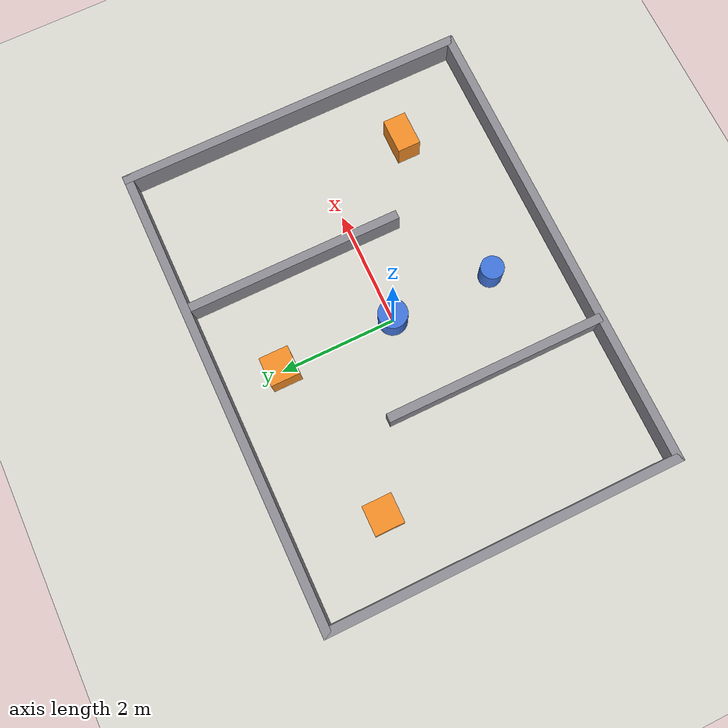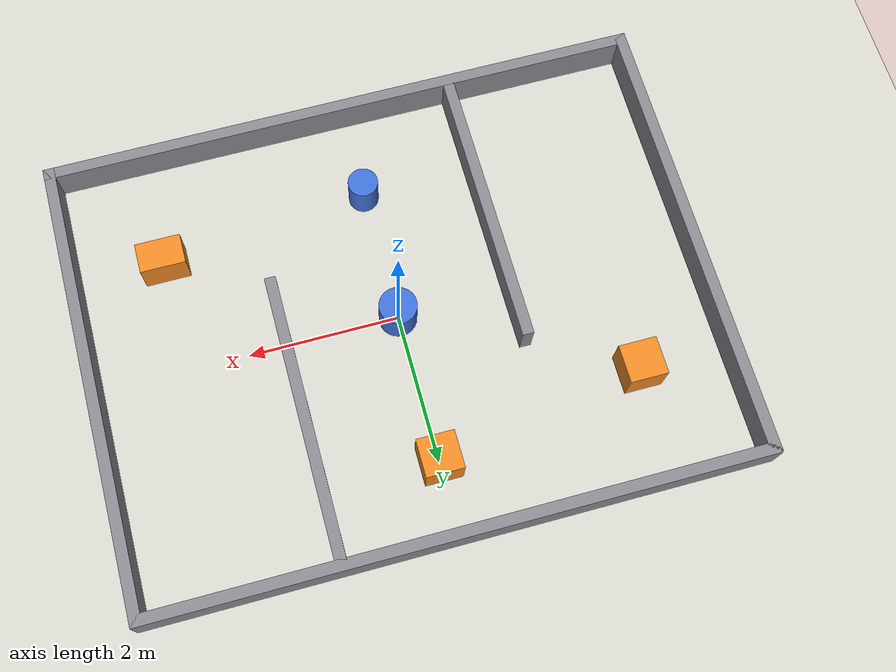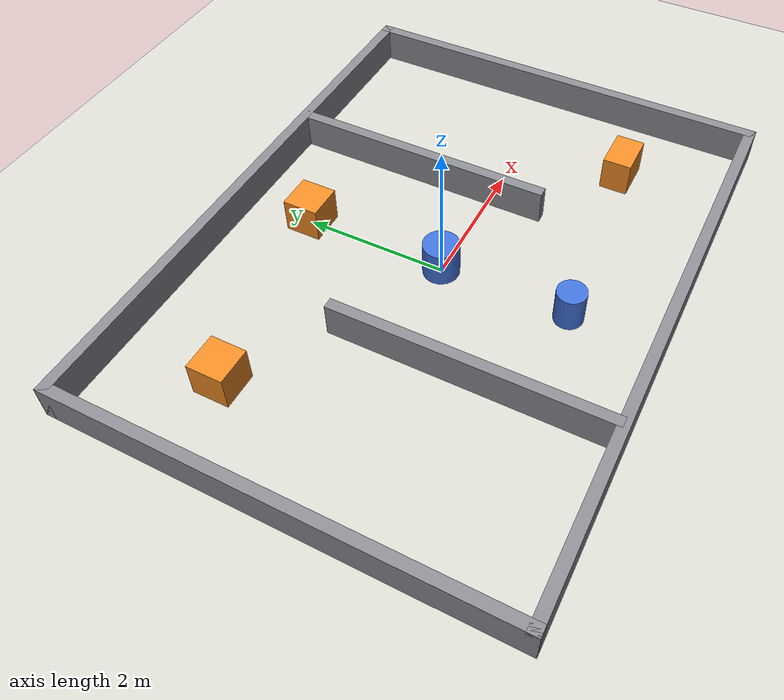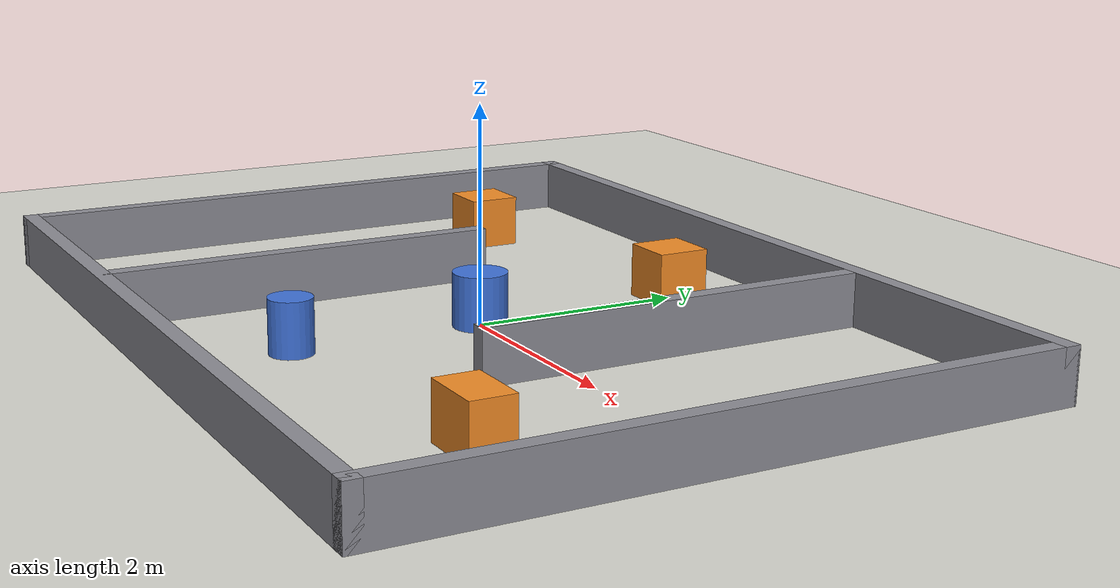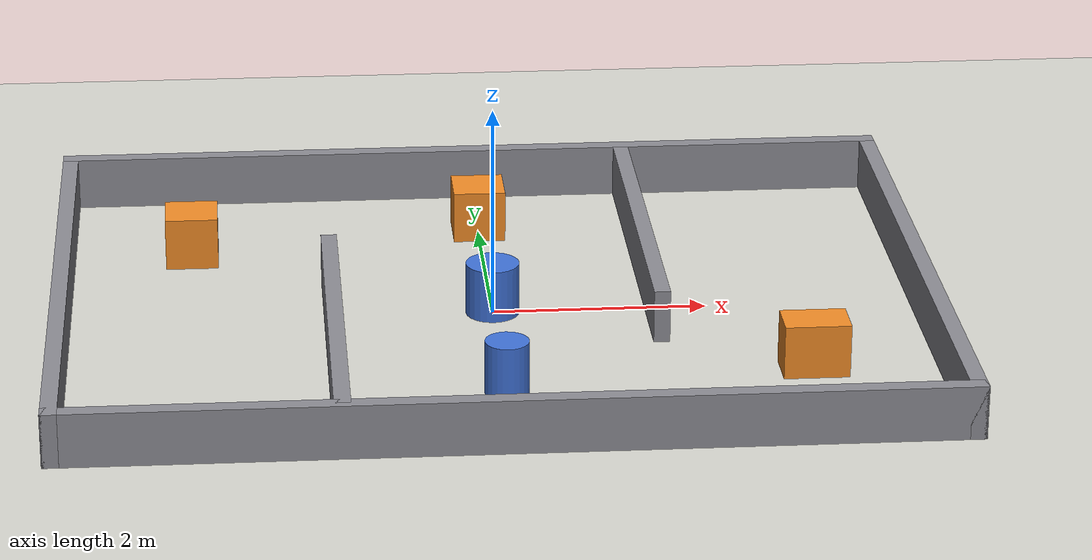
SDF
<?xml version="1.0"?>
<!-- AUTO-GENERATED by tools/generate_world_and_map.py - edit the layout there. -->
<sdf version="1.6">
  <world name="obstacle_course">
    <gravity>0 0 -9.8</gravity>
    <physics type="ode">
      <real_time_update_rate>1000.0</real_time_update_rate>
      <max_step_size>0.001</max_step_size>
      <real_time_factor>1</real_time_factor>
    </physics>
    <scene>
      <ambient>0.5 0.5 0.5 1</ambient>
      <background>0.75 0.8 0.85 1</background>
      <shadows>false</shadows>
    </scene>
    <gui fullscreen="0">
      <camera name="user_camera">
        <pose>0 -8.5 9.5 0 0.85 1.5708</pose>
        <view_controller>orbit</view_controller>
      </camera>
    </gui>
    <light name="sun" type="directional">
      <cast_shadows>false</cast_shadows>
      <pose>0 0 10 0 0 0</pose>
      <diffuse>0.9 0.9 0.9 1</diffuse>
      <specular>0.2 0.2 0.2 1</specular>
      <direction>-0.4 0.2 -0.9</direction>
    </light>
    <model name="ground_plane">
      <static>true</static>
      <link name="link">
        <collision name="collision">
          <geometry><plane><normal>0 0 1</normal><size>40 40</size></plane></geometry>
          <surface><friction><ode><mu>100</mu><mu2>50</mu2></ode></friction></surface>
        </collision>
        <visual name="visual">
          <cast_shadows>false</cast_shadows>
          <geometry><plane><normal>0 0 1</normal><size>40 40</size></plane></geometry>
          <material><ambient>0.85 0.85 0.82 1</ambient><diffuse>0.85 0.85 0.82 1</diffuse><specular>0.1 0.1 0.1 1</specular></material>
        </visual>
      </link>
    </model>
    <model name="wall_north">
      <static>true</static>
      <pose>0.0 3.0 0.25 0 0 0</pose>
      <link name="link">
        <collision name="collision"><geometry><box><size>8.150 0.150 0.5</size></box></geometry></collision>
        <visual name="visual"><geometry><box><size>8.150 0.150 0.5</size></box></geometry><material><ambient>0.55 0.55 0.58 1</ambient><diffuse>0.55 0.55 0.58 1</diffuse><specular>0.1 0.1 0.1 1</specular></material></visual>
      </link>
    </model>
    <model name="wall_south">
      <static>true</static>
      <pose>0.0 -3.0 0.25 0 0 0</pose>
      <link name="link">
        <collision name="collision"><geometry><box><size>8.150 0.150 0.5</size></box></geometry></collision>
        <visual name="visual"><geometry><box><size>8.150 0.150 0.5</size></box></geometry><material><ambient>0.55 0.55 0.58 1</ambient><diffuse>0.55 0.55 0.58 1</diffuse><specular>0.1 0.1 0.1 1</specular></material></visual>
      </link>
    </model>
    <model name="wall_east">
      <static>true</static>
      <pose>4.0 0.0 0.25 0 0 0</pose>
      <link name="link">
        <collision name="collision"><geometry><box><size>0.150 6.150 0.5</size></box></geometry></collision>
        <visual name="visual"><geometry><box><size>0.150 6.150 0.5</size></box></geometry><material><ambient>0.55 0.55 0.58 1</ambient><diffuse>0.55 0.55 0.58 1</diffuse><specular>0.1 0.1 0.1 1</specular></material></visual>
      </link>
    </model>
    <model name="wall_west">
      <static>true</static>
      <pose>-4.0 0.0 0.25 0 0 0</pose>
      <link name="link">
        <collision name="collision"><geometry><box><size>0.150 6.150 0.5</size></box></geometry></collision>
        <visual name="visual"><geometry><box><size>0.150 6.150 0.5</size></box></geometry><material><ambient>0.55 0.55 0.58 1</ambient><diffuse>0.55 0.55 0.58 1</diffuse><specular>0.1 0.1 0.1 1</specular></material></visual>
      </link>
    </model>
    <model name="divider_a">
      <static>true</static>
      <pose>-1.5 -1.1 0.25 0 0 0</pose>
      <link name="link">
        <collision name="collision"><geometry><box><size>0.150 3.800 0.5</size></box></geometry></collision>
        <visual name="visual"><geometry><box><size>0.150 3.800 0.5</size></box></geometry><material><ambient>0.55 0.55 0.58 1</ambient><diffuse>0.55 0.55 0.58 1</diffuse><specular>0.1 0.1 0.1 1</specular></material></visual>
      </link>
    </model>
    <model name="divider_b">
      <static>true</static>
      <pose>1.5 1.1 0.25 0 0 0</pose>
      <link name="link">
        <collision name="collision"><geometry><box><size>0.150 3.800 0.5</size></box></geometry></collision>
        <visual name="visual"><geometry><box><size>0.150 3.800 0.5</size></box></geometry><material><ambient>0.55 0.55 0.58 1</ambient><diffuse>0.55 0.55 0.58 1</diffuse><specular>0.1 0.1 0.1 1</specular></material></visual>
      </link>
    </model>
    <model name="crate_1">
      <static>true</static>
      <pose>-2.8 1.5 0.25 0 0 0</pose>
      <link name="link">
        <collision name="collision"><geometry><box><size>0.500 0.500 0.5</size></box></geometry></collision>
        <visual name="visual"><geometry><box><size>0.500 0.500 0.5</size></box></geometry><material><ambient>0.95 0.55 0.15 1</ambient><diffuse>0.95 0.55 0.15 1</diffuse><specular>0.1 0.1 0.1 1</specular></material></visual>
      </link>
    </model>
    <model name="crate_2">
      <static>true</static>
      <pose>0.0 2.0 0.25 0 0 0</pose>
      <link name="link">
        <collision name="collision"><geometry><box><size>0.500 0.500 0.5</size></box></geometry></collision>
        <visual name="visual"><geometry><box><size>0.500 0.500 0.5</size></box></geometry><material><ambient>0.95 0.55 0.15 1</ambient><diffuse>0.95 0.55 0.15 1</diffuse><specular>0.1 0.1 0.1 1</specular></material></visual>
      </link>
    </model>
    <model name="crate_3">
      <static>true</static>
      <pose>2.8 -1.5 0.25 0 0 0</pose>
      <link name="link">
        <collision name="collision"><geometry><box><size>0.600 0.400 0.5</size></box></geometry></collision>
        <visual name="visual"><geometry><box><size>0.600 0.400 0.5</size></box></geometry><material><ambient>0.95 0.55 0.15 1</ambient><diffuse>0.95 0.55 0.15 1</diffuse><specular>0.1 0.1 0.1 1</specular></material></visual>
      </link>
    </model>
    <model name="pillar_1">
      <static>true</static>
      <pose>0.0 0.0 0.25 0 0 0</pose>
      <link name="link">
        <collision name="collision"><geometry><cylinder><radius>0.25</radius><length>0.5</length></cylinder></geometry></collision>
        <visual name="visual"><geometry><cylinder><radius>0.25</radius><length>0.5</length></cylinder></geometry><material><ambient>0.25 0.45 0.85 1</ambient><diffuse>0.25 0.45 0.85 1</diffuse><specular>0.1 0.1 0.1 1</specular></material></visual>
      </link>
    </model>
    <model name="pillar_2">
      <static>true</static>
      <pose>0.0 -1.8 0.25 0 0 0</pose>
      <link name="link">
        <collision name="collision"><geometry><cylinder><radius>0.2</radius><length>0.5</length></cylinder></geometry></collision>
        <visual name="visual"><geometry><cylinder><radius>0.2</radius><length>0.5</length></cylinder></geometry><material><ambient>0.25 0.45 0.85 1</ambient><diffuse>0.25 0.45 0.85 1</diffuse><specular>0.1 0.1 0.1 1</specular></material></visual>
      </link>
    </model>
  </world>
</sdf>
